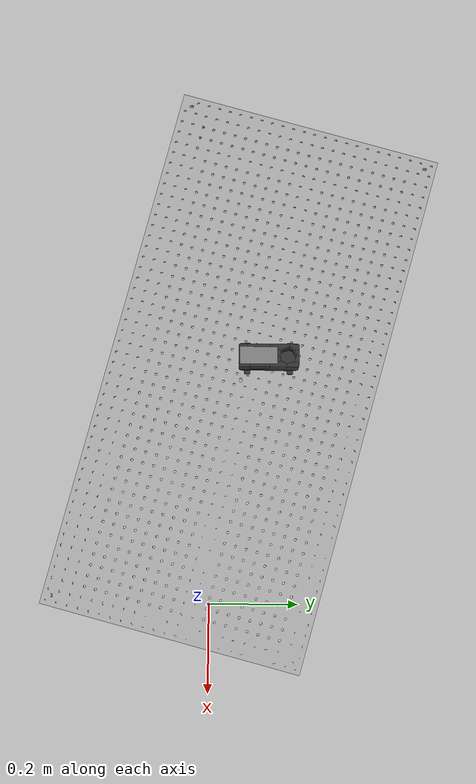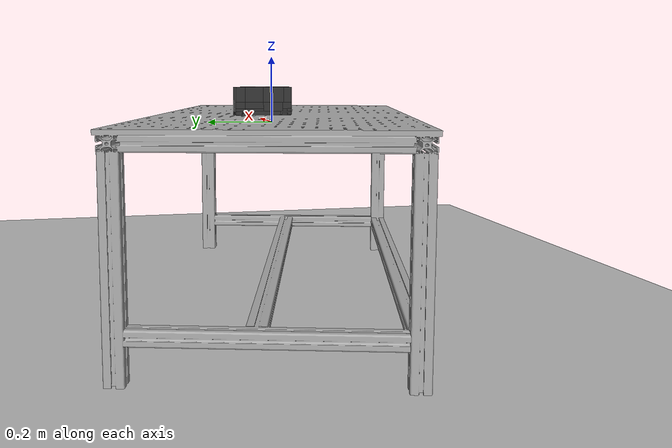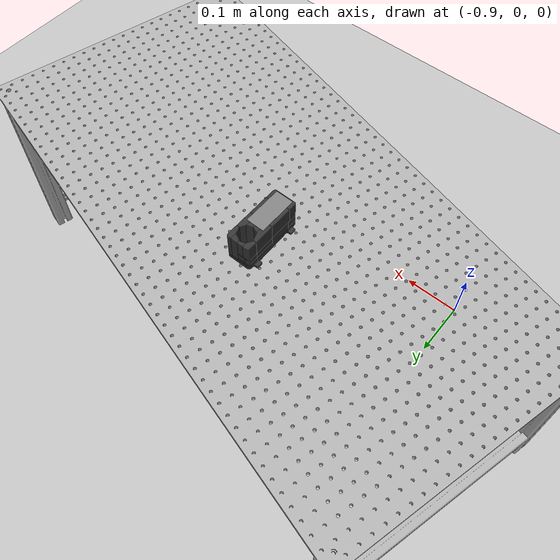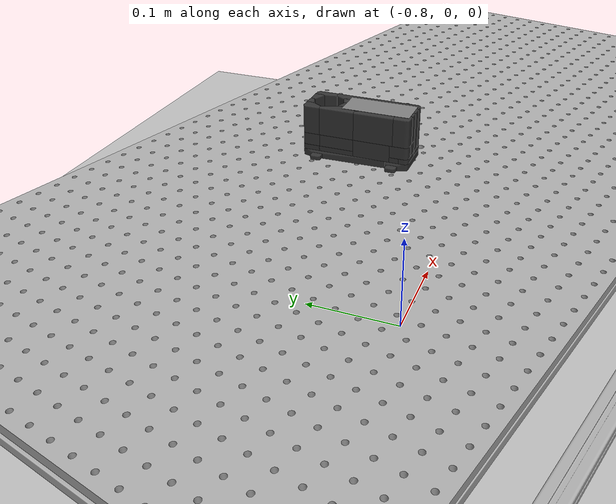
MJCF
<mujoco model="assemble_hole">
    <compiler angle="radian"/>

    <option timestep="0.005" gravity="0 0 -9.81" integrator="implicitfast" impratio="10" iterations="100">
        <flag contact="enable" energy="enable" gravity="enable"/>
    </option>

    <visual>
        <rgba haze="0.15 0.25 0.35 1"/>
        <global azimuth="120" elevation="-20"/>
    </visual>

    <asset>
        <mesh name="table" file="../objects/table/table.STL" scale="1.0 1.0 0.77"/>
        <!-- 使用修复后的 hole_fixed 模型（collision parts），内联 mesh 声明 -->
        <mesh name="hole_fixed_collision_0" file="../objects/hole/hole_fixed/hole_fixed_collision_0.obj" scale="1.2 1.2 1.0"/>
        <mesh name="hole_fixed_collision_1" file="../objects/hole/hole_fixed/hole_fixed_collision_1.obj" scale="1.2 1.2 1.0"/>
        <mesh name="hole_fixed_collision_2" file="../objects/hole/hole_fixed/hole_fixed_collision_2.obj" scale="1.2 1.2 1.0"/>
        <mesh name="hole_fixed_collision_3" file="../objects/hole/hole_fixed/hole_fixed_collision_3.obj" scale="1.2 1.2 1.0"/>
        <mesh name="hole_fixed_collision_4" file="../objects/hole/hole_fixed/hole_fixed_collision_4.obj" scale="1.2 1.2 1.0"/>
        <mesh name="hole_fixed_collision_5" file="../objects/hole/hole_fixed/hole_fixed_collision_5.obj" scale="1.2 1.2 1.0"/>
        <mesh name="hole_fixed_collision_6" file="../objects/hole/hole_fixed/hole_fixed_collision_6.obj" scale="1.2 1.2 1.0"/>
        <mesh name="hole_fixed_collision_7" file="../objects/hole/hole_fixed/hole_fixed_collision_7.obj" scale="1.2 1.2 1.0"/>
        <mesh name="hole_fixed_collision_8" file="../objects/hole/hole_fixed/hole_fixed_collision_8.obj" scale="1.2 1.2 1.0"/>
        <mesh name="hole_fixed_collision_9" file="../objects/hole/hole_fixed/hole_fixed_collision_9.obj" scale="1.2 1.2 1.0"/>
        <mesh name="hole_fixed_collision_10" file="../objects/hole/hole_fixed/hole_fixed_collision_10.obj" scale="1.2 1.2 1.0"/>
        <mesh name="hole_fixed_collision_11" file="../objects/hole/hole_fixed/hole_fixed_collision_11.obj" scale="1.2 1.2 1.0"/>
        <mesh name="hole_fixed_collision_12" file="../objects/hole/hole_fixed/hole_fixed_collision_12.obj" scale="1.2 1.2 1.0"/>
        <mesh name="hole_fixed_collision_13" file="../objects/hole/hole_fixed/hole_fixed_collision_13.obj" scale="1.2 1.2 1.0"/>
        <mesh name="hole_fixed_collision_14" file="../objects/hole/hole_fixed/hole_fixed_collision_14.obj" scale="1.2 1.2 1.0"/>
        <mesh name="hole_fixed_collision_15" file="../objects/hole/hole_fixed/hole_fixed_collision_15.obj" scale="1.2 1.2 1.0"/>
        <mesh name="hole_fixed_collision_16" file="../objects/hole/hole_fixed/hole_fixed_collision_16.obj" scale="1.2 1.2 1.0"/>
        <mesh name="hole_fixed_collision_17" file="../objects/hole/hole_fixed/hole_fixed_collision_17.obj" scale="1.2 1.2 1.0"/>
        <mesh name="hole_fixed_collision_18" file="../objects/hole/hole_fixed/hole_fixed_collision_18.obj" scale="1.2 1.2 1.0"/>
        <mesh name="hole_fixed_collision_19" file="../objects/hole/hole_fixed/hole_fixed_collision_19.obj" scale="1.2 1.2 1.0"/>
        <mesh name="hole_fixed_collision_20" file="../objects/hole/hole_fixed/hole_fixed_collision_20.obj" scale="1.2 1.2 1.0"/>
        <mesh name="hole_fixed_collision_21" file="../objects/hole/hole_fixed/hole_fixed_collision_21.obj" scale="1.2 1.2 1.0"/>
        <mesh name="hole_fixed_collision_22" file="../objects/hole/hole_fixed/hole_fixed_collision_22.obj" scale="1.2 1.2 1.0"/>
        <mesh name="hole_fixed_collision_23" file="../objects/hole/hole_fixed/hole_fixed_collision_23.obj" scale="1.2 1.2 1.0"/>
        <mesh name="hole_fixed_collision_24" file="../objects/hole/hole_fixed/hole_fixed_collision_24.obj" scale="1.2 1.2 1.0"/>
        <mesh name="hole_fixed_collision_25" file="../objects/hole/hole_fixed/hole_fixed_collision_25.obj" scale="1.2 1.2 1.0"/>
        <mesh name="hole_fixed_collision_26" file="../objects/hole/hole_fixed/hole_fixed_collision_26.obj" scale="1.2 1.2 1.0"/>
        <mesh name="hole_fixed_collision_27" file="../objects/hole/hole_fixed/hole_fixed_collision_27.obj" scale="1.2 1.2 1.0"/>
        <mesh name="hole_fixed_collision_28" file="../objects/hole/hole_fixed/hole_fixed_collision_28.obj" scale="1.2 1.2 1.0"/>
        <mesh name="hole_fixed_collision_29" file="../objects/hole/hole_fixed/hole_fixed_collision_29.obj" scale="1.2 1.2 1.0"/>
        <mesh name="hole_fixed_collision_30" file="../objects/hole/hole_fixed/hole_fixed_collision_30.obj" scale="1.2 1.2 1.0"/>
        <mesh name="hole_fixed_collision_31" file="../objects/hole/hole_fixed/hole_fixed_collision_31.obj" scale="1.2 1.2 1.0"/>
        <mesh name="hole_fixed_collision_32" file="../objects/hole/hole_fixed/hole_fixed_collision_32.obj" scale="1.2 1.2 1.0"/>
        <mesh name="hole_fixed_collision_33" file="../objects/hole/hole_fixed/hole_fixed_collision_33.obj" scale="1.2 1.2 1.0"/>
        <mesh name="hole_fixed_collision_34" file="../objects/hole/hole_fixed/hole_fixed_collision_34.obj" scale="1.2 1.2 1.0"/>
        <mesh name="hole_fixed_collision_35" file="../objects/hole/hole_fixed/hole_fixed_collision_35.obj" scale="1.2 1.2 1.0"/>
        <mesh name="hole_fixed_collision_36" file="../objects/hole/hole_fixed/hole_fixed_collision_36.obj" scale="1.2 1.2 1.0"/>
        <mesh name="hole_fixed_collision_37" file="../objects/hole/hole_fixed/hole_fixed_collision_37.obj" scale="1.2 1.2 1.0"/>
        <mesh name="hole_fixed_collision_38" file="../objects/hole/hole_fixed/hole_fixed_collision_38.obj" scale="1.2 1.2 1.0"/>
        <mesh name="hole_fixed_collision_39" file="../objects/hole/hole_fixed/hole_fixed_collision_39.obj" scale="1.2 1.2 1.0"/>
        <mesh name="hole_fixed_collision_40" file="../objects/hole/hole_fixed/hole_fixed_collision_40.obj" scale="1.2 1.2 1.0"/>
        <mesh name="hole_fixed_collision_41" file="../objects/hole/hole_fixed/hole_fixed_collision_41.obj" scale="1.2 1.2 1.0"/>
        <texture type="skybox" builtin="gradient" rgb1="0.68 0.68 0.68" rgb2="0.3 0.3 0.3" width="512" height="3072"/>
        <texture name="groundplane" type="2d" builtin="checker" mark="edge" rgb1="0.68 0.68 0.68" rgb2="0.8 0.8 0.8"
                 markrgb="0.68 0.68 0.68" width="300" height="300"/>
        <material name="groundplane" reflectance="0.2" shininess="0.0" specular="0.5" texrepeat="5 5"
                  texture="groundplane" texuniform="true"/>
        <texture name="wood" type="2d" file="../textures/wood.png"/>
        <material name="wood" texture="wood" texrepeat="1 1" texuniform="true" rgba="0.68 0.68 0.68 1"/>
    </asset>

    <worldbody>
        <!-- Floor -->
        <geom condim="3" material="groundplane" name="floor" pos="0 0 -0.42" size="3 3 .125" type="plane"/>
        <light diffuse=".8 .8 .8" dir="0 -.15 -1" directional="false" pos="1 1 8.0" specular="0.3 0.3 0.3"
               castshadow="false"/>
        <light diffuse=".8 .8 .8" dir="0 -.15 -1" directional="false" pos="-3. -3. 8.0" specular="0.3 0.3 0.3"
               castshadow="false"/>

        <!-- 固定视角 -->
        <camera mode="fixed" name="frontview" pos="1.6 0 1.45" quat="0.56 0.43 0.43 0.56"/>
        <camera mode="fixed" name="birdview" pos="-0.2 0 3.0" quat="0.7071 0 0 0.7071"/>
        <camera mode="fixed" name="agentview" pos="0.5 0 1.35" quat="0.653 0.271 0.271 0.653"/>
        <camera mode="fixed" name="sideview" pos="-0.05651774593317116 1.2761224129427358 1.4879572214102434"
                quat="0.009905065491771751 0.006877963156909582 0.5912228352893879 0.806418094001364"/>

        <body name="table" pos="0.15 0.2 -0.42" euler="0 0 -0.26">
            <geom type="mesh" contype="4" conaffinity="3" condim="3" group="0" rgba="0.68 0.68 0.68 1" mesh="table"
                  friction="0.95 0.9 0.9"/>
        </body>

        <!-- 使用 zhoukong.STL 的孔模型（已调整到位于 agentview 摄像机正下方） -->
        <body name="hole" pos="-0.55 0.13 0.114" euler="0 0 -1.57">
            <inertial pos="0 0 0" mass="1e-6" diaginertia="1e-6 1e-6 1e-6"/>
            <!-- 使用分解的 collision meshes 作为碰撞几何（视觉使用 collision meshes 或单独视觉 mesh） -->
            <geom type="mesh" mesh="hole_fixed_collision_0" rgba="0.2 0.2 0.2 1" contype="4" conaffinity="3" condim="3"/>
            <geom type="mesh" mesh="hole_fixed_collision_1" rgba="0.2 0.2 0.2 1" contype="4" conaffinity="3" condim="3"/>
            <geom type="mesh" mesh="hole_fixed_collision_2" rgba="0.2 0.2 0.2 1" contype="4" conaffinity="3" condim="3"/>
            <geom type="mesh" mesh="hole_fixed_collision_3" rgba="0.2 0.2 0.2 1" contype="4" conaffinity="3" condim="3"/>
            <geom type="mesh" mesh="hole_fixed_collision_4" rgba="0.2 0.2 0.2 1" contype="4" conaffinity="3" condim="3"/>
            <geom type="mesh" mesh="hole_fixed_collision_5" rgba="0.2 0.2 0.2 1" contype="4" conaffinity="3" condim="3"/>
            <geom type="mesh" mesh="hole_fixed_collision_6" rgba="0.2 0.2 0.2 1" contype="4" conaffinity="3" condim="3"/>
            <geom type="mesh" mesh="hole_fixed_collision_7" rgba="0.2 0.2 0.2 1" contype="4" conaffinity="3" condim="3"/>
            <geom type="mesh" mesh="hole_fixed_collision_8" rgba="0.2 0.2 0.2 1" contype="4" conaffinity="3" condim="3"/>
            <geom type="mesh" mesh="hole_fixed_collision_9" rgba="0.2 0.2 0.2 1" contype="4" conaffinity="3" condim="3"/>
            <geom type="mesh" mesh="hole_fixed_collision_10" rgba="0.2 0.2 0.2 1" contype="4" conaffinity="3" condim="3"/>
            <geom type="mesh" mesh="hole_fixed_collision_11" rgba="0.2 0.2 0.2 1" contype="4" conaffinity="3" condim="3"/>
            <geom type="mesh" mesh="hole_fixed_collision_12" rgba="0.2 0.2 0.2 1" contype="4" conaffinity="3" condim="3"/>
            <geom type="mesh" mesh="hole_fixed_collision_13" rgba="0.2 0.2 0.2 1" contype="4" conaffinity="3" condim="3"/>
            <geom type="mesh" mesh="hole_fixed_collision_14" rgba="0.2 0.2 0.2 1" contype="4" conaffinity="3" condim="3"/>
            <geom type="mesh" mesh="hole_fixed_collision_15" rgba="0.2 0.2 0.2 1" contype="4" conaffinity="3" condim="3"/>
            <geom type="mesh" mesh="hole_fixed_collision_16" rgba="0.2 0.2 0.2 1" contype="4" conaffinity="3" condim="3"/>
            <geom type="mesh" mesh="hole_fixed_collision_17" rgba="0.2 0.2 0.2 1" contype="4" conaffinity="3" condim="3"/>
            <geom type="mesh" mesh="hole_fixed_collision_18" rgba="0.2 0.2 0.2 1" contype="4" conaffinity="3" condim="3"/>
            <geom type="mesh" mesh="hole_fixed_collision_19" rgba="0.2 0.2 0.2 1" contype="4" conaffinity="3" condim="3"/>
            <geom type="mesh" mesh="hole_fixed_collision_20" rgba="0.2 0.2 0.2 1" contype="4" conaffinity="3" condim="3"/>
            <geom type="mesh" mesh="hole_fixed_collision_21" rgba="0.2 0.2 0.2 1" contype="4" conaffinity="3" condim="3"/>
            <geom type="mesh" mesh="hole_fixed_collision_22" rgba="0.2 0.2 0.2 1" contype="4" conaffinity="3" condim="3"/>
            <geom type="mesh" mesh="hole_fixed_collision_23" rgba="0.2 0.2 0.2 1" contype="4" conaffinity="3" condim="3"/>
            <geom type="mesh" mesh="hole_fixed_collision_24" rgba="0.2 0.2 0.2 1" contype="4" conaffinity="3" condim="3"/>
            <geom type="mesh" mesh="hole_fixed_collision_25" rgba="0.2 0.2 0.2 1" contype="4" conaffinity="3" condim="3"/>
            <geom type="mesh" mesh="hole_fixed_collision_26" rgba="0.2 0.2 0.2 1" contype="4" conaffinity="3" condim="3"/>
            <geom type="mesh" mesh="hole_fixed_collision_27" rgba="0.2 0.2 0.2 1" contype="4" conaffinity="3" condim="3"/>
            <geom type="mesh" mesh="hole_fixed_collision_28" rgba="0.2 0.2 0.2 1" contype="4" conaffinity="3" condim="3"/>
            <geom type="mesh" mesh="hole_fixed_collision_29" rgba="0.2 0.2 0.2 1" contype="4" conaffinity="3" condim="3"/>
            <geom type="mesh" mesh="hole_fixed_collision_30" rgba="0.2 0.2 0.2 1" contype="4" conaffinity="3" condim="3"/>
            <geom type="mesh" mesh="hole_fixed_collision_31" rgba="0.2 0.2 0.2 1" contype="4" conaffinity="3" condim="3"/>
            <geom type="mesh" mesh="hole_fixed_collision_32" rgba="0.2 0.2 0.2 1" contype="4" conaffinity="3" condim="3"/>
            <geom type="mesh" mesh="hole_fixed_collision_33" rgba="0.2 0.2 0.2 1" contype="4" conaffinity="3" condim="3"/>
            <geom type="mesh" mesh="hole_fixed_collision_34" rgba="0.2 0.2 0.2 1" contype="4" conaffinity="3" condim="3"/>
            <geom type="mesh" mesh="hole_fixed_collision_35" rgba="0.2 0.2 0.2 1" contype="4" conaffinity="3" condim="3"/>
            <geom type="mesh" mesh="hole_fixed_collision_36" rgba="0.2 0.2 0.2 1" contype="4" conaffinity="3" condim="3"/>
            <geom type="mesh" mesh="hole_fixed_collision_37" rgba="0.2 0.2 0.2 1" contype="4" conaffinity="3" condim="3"/>
            <geom type="mesh" mesh="hole_fixed_collision_38" rgba="0.2 0.2 0.2 1" contype="4" conaffinity="3" condim="3"/>
            <geom type="mesh" mesh="hole_fixed_collision_39" rgba="0.2 0.2 0.2 1" contype="4" conaffinity="3" condim="3"/>
            <geom type="mesh" mesh="hole_fixed_collision_40" rgba="0.2 0.2 0.2 1" contype="4" conaffinity="3" condim="3"/>
            <geom type="mesh" mesh="hole_fixed_collision_41" rgba="0.2 0.2 0.2 1" contype="4" conaffinity="3" condim="3"/>
            <!-- 与动态孔等价的参考点（world pos = 0.6,0,0.505），相对 body 的 pos = 0 0 0.037 Z_table=0.46-->
            <geom name="hole_blocker" type="box" pos="0.0229 0 0.001" euler="0 0 0" contype="4" conaffinity="3" size="0.042 0.019 0.00005"/>
        </body>
    </worldbody>
</mujoco>
